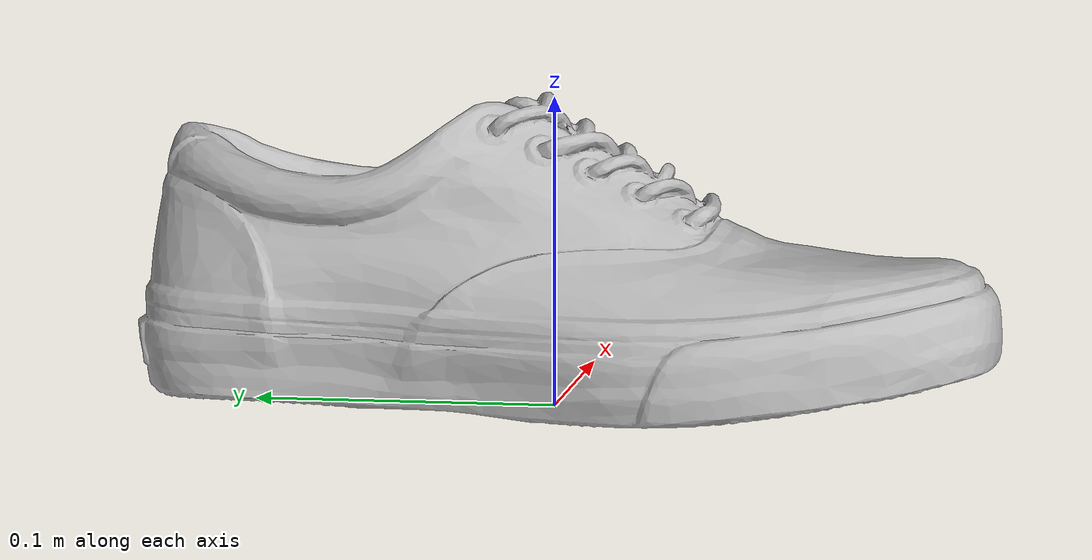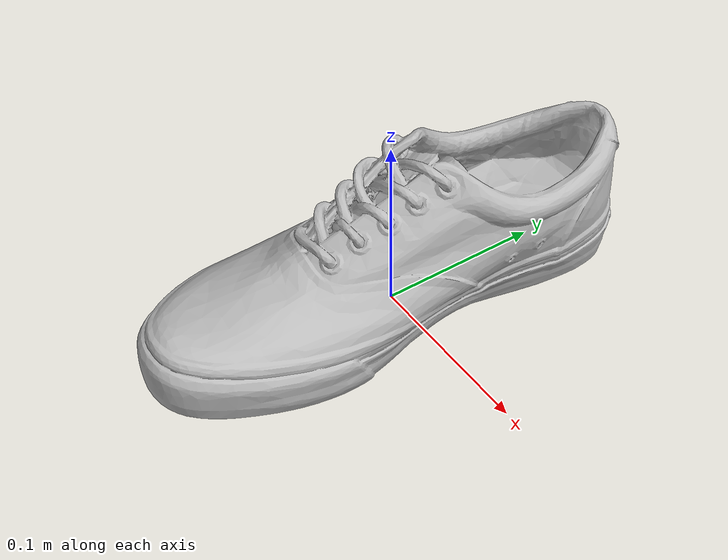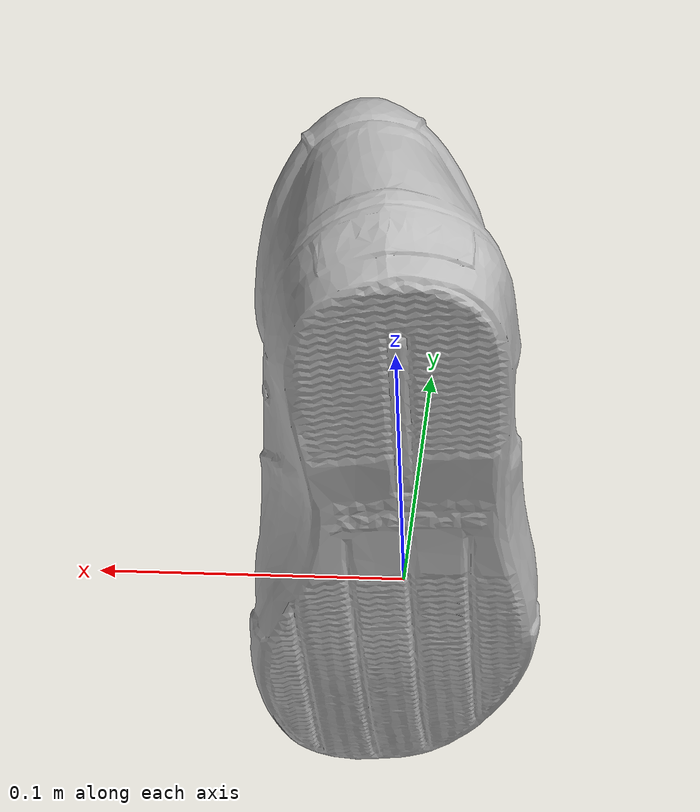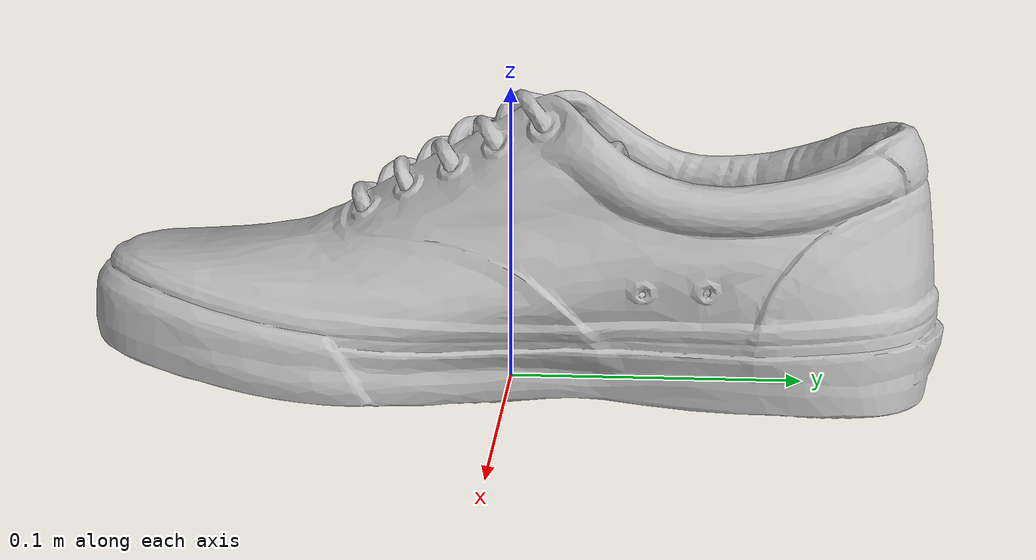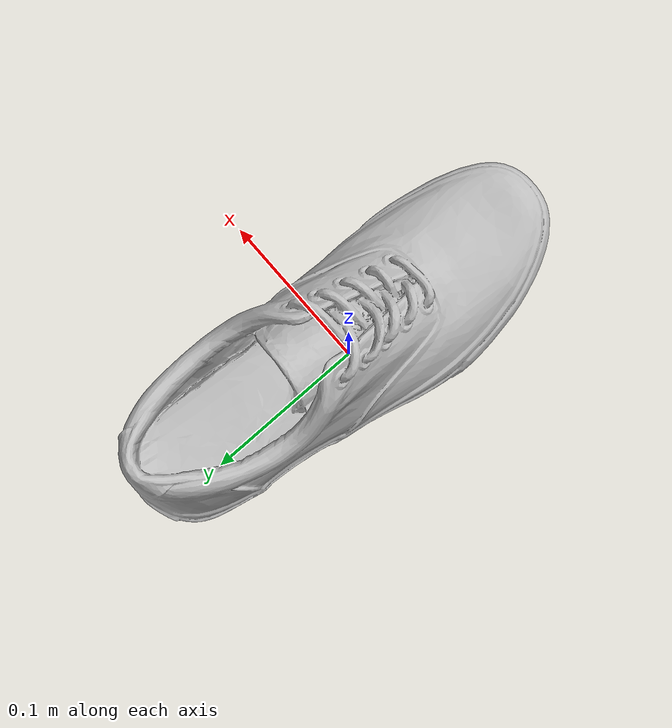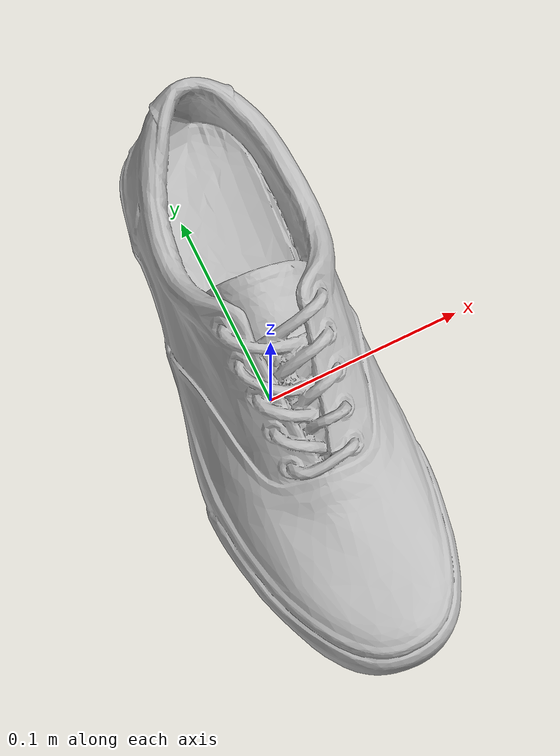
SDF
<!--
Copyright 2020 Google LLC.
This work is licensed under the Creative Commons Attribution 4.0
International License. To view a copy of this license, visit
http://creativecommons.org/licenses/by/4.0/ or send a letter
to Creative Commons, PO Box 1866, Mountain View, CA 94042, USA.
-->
<?xml version="1.0" ?>
<sdf version="1.6">
  <model name="Mens_Striper_Sneaker_in_White_rnp8HUli59Y">
    <link name="link_0">
      <visual name="visual">
        <geometry>
          <mesh>
            <uri>meshes/model.obj</uri>
          </mesh>
        </geometry>
      </visual>
      <collision name="collision_0">
        <geometry>
          <mesh>
            <uri>meshes/model.obj</uri>
          </mesh>
        </geometry>
      </collision>
    </link>
  </model>
</sdf>
